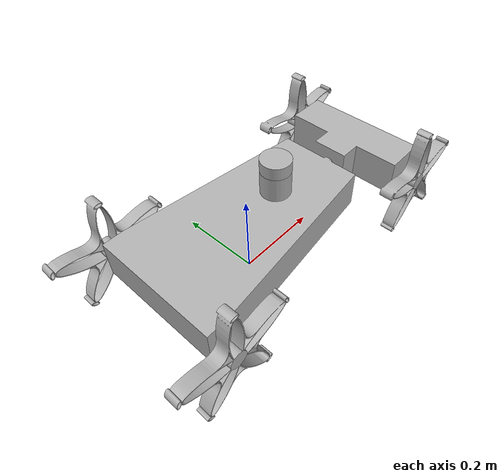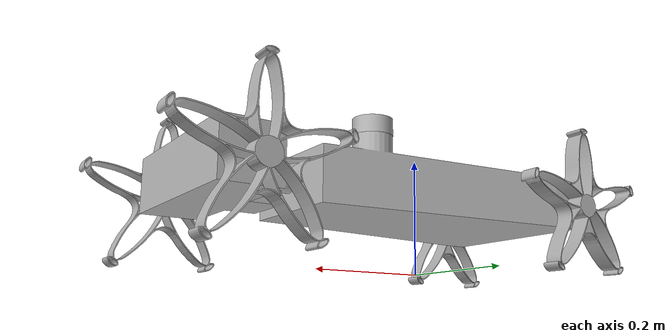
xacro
<?xml version="1.0" ?>
<robot name="pacifista" xmlns:xacro="http://www.ros.org/wiki/xacro">

<xacro:include filename="$(find pacifista_description)/urdf/materials.xacro" />
<xacro:include filename="$(find pacifista_description)/urdf/pacifista.trans" />
<xacro:include filename="$(find pacifista_description)/urdf/pacifista.gazebo" />

<link name="base_footprint"/>
  <material name="white">
    <color rgba="0 0 0 1"/>
  </material>
<link name="base_link">
  <inertial>
    <origin xyz="0.06416645884835959 -9.350742402602919e-14 0.04953820388310092" rpy="0 0 0"/>
    <mass value="10.289943238273888"/>
    <inertia ixx="0.0667232" iyy="0.4306062" izz="0.4824065" ixy="-0.0" iyz="0.0" ixz="-0.0003325"/>
  </inertial>
  <visual>
    <origin xyz="0 0 0" rpy="0 0 0"/>
    <geometry>
      <mesh filename="package://pacifista_description/meshes/base_link.stl" scale="0.001 0.001 0.001"/>
    </geometry>
    <material name="silver"/>
  </visual>
  <collision>
    <origin xyz="0 0 0" rpy="0 0 0"/>
    <geometry>
      <mesh filename="package://pacifista_description/meshes/base_link.stl" scale="0.001 0.001 0.001"/>
    </geometry>
  </collision>
</link>

<link name="wh_r_frwd_1">
  <inertial>
    <origin xyz="9.053519118396025e-06 0.015003093731232209 -2.416482632122685e-05" rpy="0 0 0"/>
    <mass value="1.1747535420042476"/>
    <inertia ixx="0.0031" iyy="0.00603" izz="0.0031" ixy="-0.0" iyz="0.0" ixz="0.0"/>
  </inertial>
  <visual>
    <origin xyz="0.225 -0.166 -0.037249" rpy="0 0 0"/>
    <geometry>
      <mesh filename="package://pacifista_description/meshes/wh_r_frwd_1.stl" scale="0.001 0.001 0.001"/>
    </geometry>
    <material name="silver"/>
  </visual>
  <collision>
    <origin xyz="0.225 -0.166 -0.037249" rpy="0 0 0"/>
    <geometry>
      <mesh filename="package://pacifista_description/meshes/wh_r_frwd_1.stl" scale="0.001 0.001 0.001"/>
    </geometry>
  </collision>
</link>

<link name="wh_l_frwd_1">
  <inertial>
    <origin xyz="-7.178188420192688e-06 -0.01500000221141995 -1.0932791507246853e-05" rpy="0 0 0"/>
    <mass value="1.17474361934232"/>
    <inertia ixx="0.0031" iyy="0.00602" izz="0.0031" ixy="0.0" iyz="0.0" ixz="-0.0"/>
  </inertial>
  <visual>
    <origin xyz="0.225 0.166 -0.037249" rpy="0 0 0"/>
    <geometry>
      <mesh filename="package://pacifista_description/meshes/wh_l_frwd_1.stl" scale="0.001 0.001 0.001"/>
    </geometry>
    <material name="silver"/>
  </visual>
  <collision>
    <origin xyz="0.225 0.166 -0.037249" rpy="0 0 0"/>
    <geometry>
      <mesh filename="package://pacifista_description/meshes/wh_l_frwd_1.stl" scale="0.001 0.001 0.001"/>
    </geometry>
  </collision>
</link>

<link name="wh_r_bck_1">
  <inertial>
    <origin xyz="7.178190349677038e-06 0.01500000221328543 -1.0932791713019752e-05" rpy="0 0 0"/>
    <mass value="1.1747436193421128"/>
    <inertia ixx="0.0031" iyy="0.00602" izz="0.0031" ixy="0.0" iyz="-0.0" ixz="0.0"/>
  </inertial>
  <visual>
    <origin xyz="-0.3848 -0.166 -0.037249" rpy="0 0 0"/>
    <geometry>
      <mesh filename="package://pacifista_description/meshes/wh_r_bck_1.stl" scale="0.001 0.001 0.001"/>
    </geometry>
    <material name="silver"/>
  </visual>
  <collision>
    <origin xyz="-0.3848 -0.166 -0.037249" rpy="0 0 0"/>
    <geometry>
      <mesh filename="package://pacifista_description/meshes/wh_r_bck_1.stl" scale="0.001 0.001 0.001"/>
    </geometry>
  </collision>
</link>

<link name="wh_l_bck_1">
  <inertial>
    <origin xyz="-7.178190368717363e-06 -0.015000002210074415 -1.0932791498503847e-05" rpy="0 0 0"/>
    <mass value="1.1747436193421126"/>
    <inertia ixx="0.0031" iyy="0.00602" izz="0.0031" ixy="0.0" iyz="0.0" ixz="-0.0"/>
  </inertial>
  <visual>
    <origin xyz="-0.3848 0.166 -0.037249" rpy="0 0 0"/>
    <geometry>
      <mesh filename="package://pacifista_description/meshes/wh_l_bck_1.stl" scale="0.001 0.001 0.001"/>
    </geometry>
    <material name="silver"/>
  </visual>
  <collision>
    <origin xyz="-0.3848 0.166 -0.037249" rpy="0 0 0"/>
    <geometry>
      <mesh filename="package://pacifista_description/meshes/wh_l_bck_1.stl" scale="0.001 0.001 0.001"/>
    </geometry>
  </collision>
</link>

<link name="lidar_1">
  <inertial>
    <origin xyz="-5.537237335317968e-15 6.44995168386231e-14 0.01500029577549461" rpy="0 0 0"/>
    <mass value="0.9063102106524822"/>
    <inertia ixx="0.000346" iyy="0.000346" izz="0.000555" ixy="-0.0" iyz="-0.0" ixz="-0.0"/>
  </inertial>
  <visual>
    <origin xyz="-0.0914 -0.0 -0.152352" rpy="0 0 0"/>
    <geometry>
      <mesh filename="package://pacifista_description/meshes/lidar_1.stl" scale="0.001 0.001 0.001"/>
    </geometry>
    <material name="silver"/>
  </visual>
  <collision>
    <origin xyz="-0.0914 -0.0 -0.152352" rpy="0 0 0"/>
    <geometry>
      <mesh filename="package://pacifista_description/meshes/lidar_1.stl" scale="0.001 0.001 0.001"/>
    </geometry>
  </collision>
</link>
 <joint name="base_joint" type="fixed">
		<parent link="base_footprint" />
		<child link="base_link" />
		<origin xyz="0 0 0.080198"/>
	</joint>
<joint name="Rev1" type="continuous">
  <origin xyz="-0.225 0.166 0.037249" rpy="0 0 0"/>
  <parent link="base_link"/>
  <child link="wh_r_frwd_1"/>
  <axis xyz="-0.0 1.0 -0.0"/>
</joint>

<joint name="Rev2" type="continuous">
  <origin xyz="-0.225 -0.166 0.037249" rpy="0 0 0"/>
  <parent link="base_link"/>
  <child link="wh_l_frwd_1"/>
  <axis xyz="-0.0 1.0 -0.0"/>
</joint>

<joint name="Rev3" type="continuous">
  <origin xyz="0.3848 0.166 0.037249" rpy="0 0 0"/>
  <parent link="base_link"/>
  <child link="wh_r_bck_1"/>
  <axis xyz="-0.0 1.0 -0.0"/>
</joint>

<joint name="Rev4" type="continuous">
  <origin xyz="0.3848 -0.166 0.037249" rpy="0 0 0"/>
  <parent link="base_link"/>
  <child link="wh_l_bck_1"/>
  <axis xyz="-0.0 1.0 -0.0"/>
</joint>

<joint name="Rigid_16" type="fixed">
  <origin xyz="0.0914 0.0 0.152352" rpy="0 0 0"/>
  <parent link="base_link"/>
  <child link="lidar_1"/>
</joint>

</robot>

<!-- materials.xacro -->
<robot name="pacifista" xmlns:xacro="http://www.ros.org/wiki/xacro" >

<material name="silver">
  <color rgba="0.700 0.700 0.700 1.000"/>
</material>

</robot>

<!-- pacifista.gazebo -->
<robot name="pacifista" xmlns:xacro="http://www.ros.org/wiki/xacro" >

<xacro:property name="body_color" value="Gazebo/Silver" />

<gazebo>
  <plugin name="gazebo_ros_control" filename="libgazebo_ros_control.so">
    <robotNamespace>/pacifista</robotNamespace>
    </plugin>
</gazebo>
<gazebo reference="base_link">
  <material>${body_color}</material>
  <mu1>0.2</mu1>
  <mu2>0.2</mu2>
  <selfCollide>true</selfCollide>
  <gravity>true</gravity>
</gazebo>

<gazebo reference="wh_r_frwd_1">
  <material>${body_color}</material>
  <mu1>20</mu1>
  <mu2>20</mu2>
  <selfCollide>true</selfCollide>
</gazebo>

<gazebo reference="wh_l_frwd_1">
  <material>${body_color}</material>
  <mu1>20</mu1>
  <mu2>20</mu2>
  <selfCollide>true</selfCollide>
</gazebo>

<gazebo reference="wh_r_bck_1">
  <material>${body_color}</material>
  <mu1>20</mu1>
  <mu2>20</mu2>
  <selfCollide>true</selfCollide>
</gazebo>

<gazebo reference="wh_l_bck_1">
  <material>${body_color}</material>
  <mu1>20</mu1>
  <mu2>20</mu2>
  <selfCollide>true</selfCollide>
</gazebo>

<gazebo reference="lidar_1">
  <material>${body_color}</material>
  <mu1>0.2</mu1>
  <mu2>0.2</mu2>
  <selfCollide>true</selfCollide>
  <sensor type="ray" name="head_hokuyo_sensor">
      <pose>0 0 0 0 0 0</pose>
      <visualize>true</visualize>
      <update_rate>40</update_rate>
      <ray>
        <scan>
          <horizontal>
            <samples>720</samples>
            <resolution>1</resolution>
            <min_angle>-3.14159</min_angle>
            <max_angle>3.14159</max_angle>
          </horizontal>
        </scan>
        <range>
          <min>0.5</min>
          <max>12.0</max>
          <resolution>0.01</resolution>
        </range>
        <noise>
          <type>gaussian</type>
          <mean>0.0</mean>
          <stddev>0.01</stddev>
        </noise>
      </ray>
      <plugin name="gazebo_ros_head_rplidar_controller" filename="libgazebo_ros_laser.so">
        <topicName>/scan</topicName>
        <robotNamespace>/laser_scan/scan</robotNamespace>
        <frameName>lidar_1</frameName>
      </plugin>
    </sensor>
</gazebo>

<gazebo>
  <plugin name="skid_steer_drive_controller" filename="libgazebo_ros_skid_steer_drive.so">
    <updateRate>100.0</updateRate>
    <robotNamespace>/pacifista</robotNamespace>
    <leftFrontJoint>Rev2</leftFrontJoint>
    <rightFrontJoint>Rev1</rightFrontJoint>
    <command>/pacifista/cmd_vel</command>
    <leftRearJoint>Rev4</leftRearJoint>
    <rightRearJoint>Rev3</rightRearJoint>
    <wheelSeparation>0.3</wheelSeparation>
    <wheelDiameter>0.276</wheelDiameter>
    <robotBaseFrame>base_footprint</robotBaseFrame>
    <torque>100</torque>
    <topicName>/pacifista/cmd_vel</topicName>
    <broadcastTF>false</broadcastTF>
    <!-- Topic to publish nav_msgs/Odometry messages, defaults to `odom` -->
    <odometryTopic>/odom</odometryTopic>

    <!-- Odometry frame, defaults to `odom` -->
    <odometryFrame>/odom</odometryFrame>
    <!-- Odometry source, 0 for ENCODER, 1 for WORLD, defaults to WORLD -->
    <odometrySource>1</odometrySource>

    <!-- Set to true to publish transforms for the odometry, defaults to true -->
    <publishOdom>false</publishOdom>
    <!-- Set to true to publish sensor_msgs/JointState on /joint_states for the wheel joints, defaults to false -->
    <publishWheelJointState>true</publishWheelJointState>
  </plugin>
</gazebo>

</robot>
